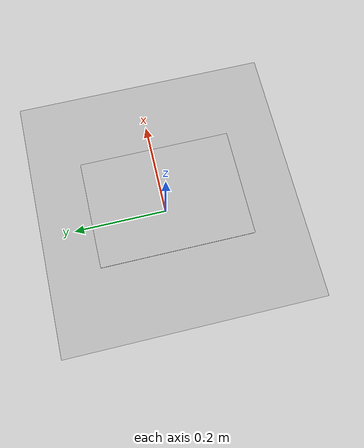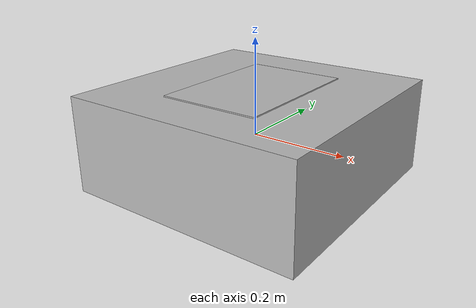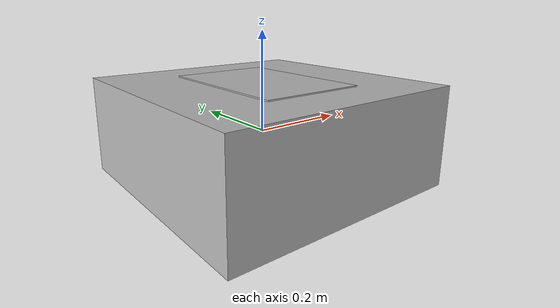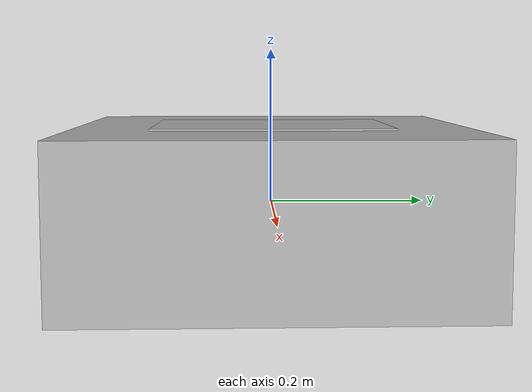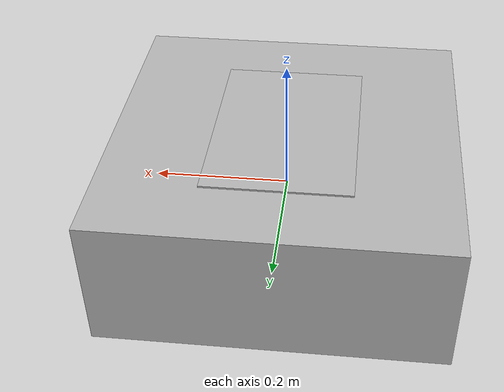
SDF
<?xml version='1.0'?>
<sdf version="1.0">
  <model name="landing_box">
    <static>true</static>
    <link name="box_link">
      <inertial>
        <mass>1.0</mass>
        <inertia> <!-- inertias are tricky to compute -->
          <!-- http://gazebosim.org/tutorials?tut=inertia&cat=build_robot -->
          <ixx>0.02407</ixx>       <!-- for a box: ixx = 0.083 * mass * (y*y + z*z) -->
          <ixy>0.0</ixy>         <!-- for a box: ixy = 0 -->
          <ixz>0.0</ixz>         <!-- for a box: ixz = 0 -->
          <iyy>0.02407</iyy>       <!-- for a box: iyy = 0.083 * mass * (x*x + z*z) -->
          <iyz>0.0</iyz>         <!-- for a box: iyz = 0 -->
          <izz>0.0415</izz>       <!-- for a box: izz = 0.083 * mass * (x*x + y*y) -->
        </inertia>
      </inertial>
      <collision name="collision">
        <geometry>
          <box>
            <size>0.5 0.5 0.2</size>
          </box>
        </geometry>
        <surface>
          <friction>
            <ode>
              <mu>1</mu>
              <mu2>1</mu2>
            </ode>
          </friction>
      </surface>
      </collision>
      <visual name="visual">
        <geometry>
          <box>
            <size>0.5 0.5 0.2</size>
          </box>
        </geometry>
      </visual>
    </link>

    <include>
      <uri>model://landing_pad</uri>
      <pose>0 0 0.1 0 0 0</pose>
      <name>landing_pad</name>
    </include>
    <joint name='pad_link' type='fixed'>
      <child>landing_pad::link</child>
      <parent>box_link</parent>
    </joint>

    <plugin name="push_animate" filename="libmoving_pad_circle.so"/>

  </model>
</sdf>

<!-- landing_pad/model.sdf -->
<sdf version="1.6">
  <model name="landing_pad">
    <static>true</static>
    <link name="link">
      <visual name="visual">
        <geometry>
          <mesh>
            <uri>model://landing_pad/meshes/landing_pad.dae</uri>
          <scale>1.0 1.0 1.0</scale></mesh>
        </geometry>
      </visual>
    </link>

  </model>
</sdf>
